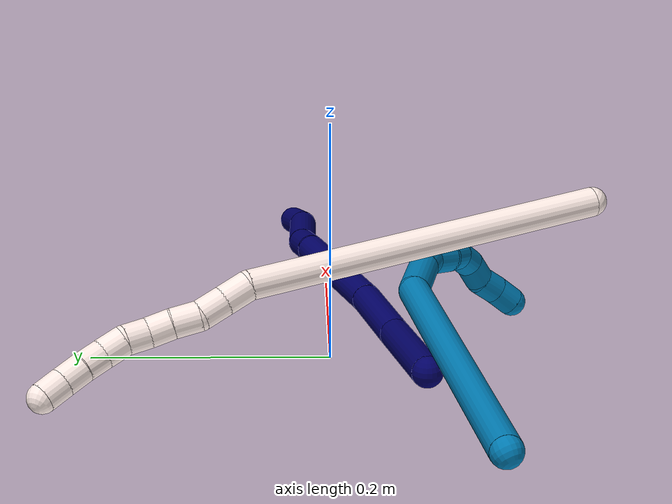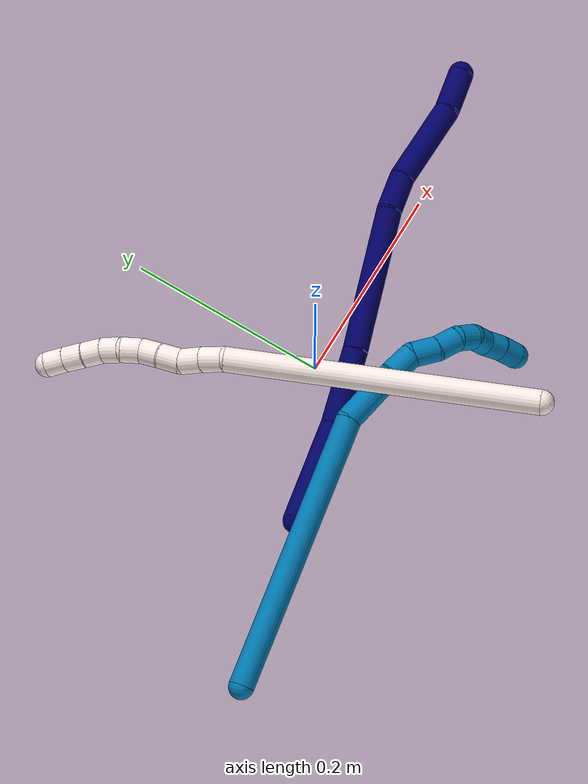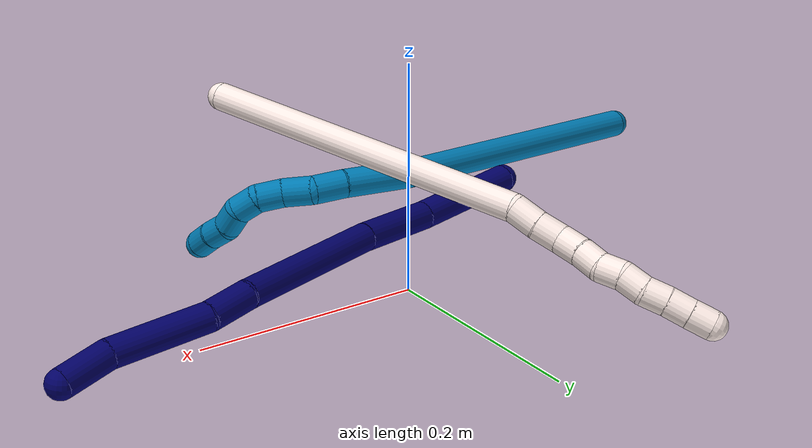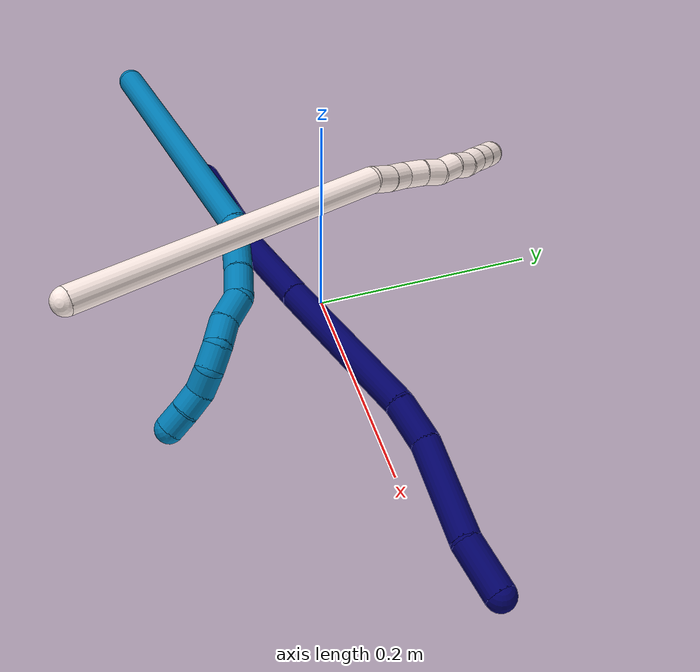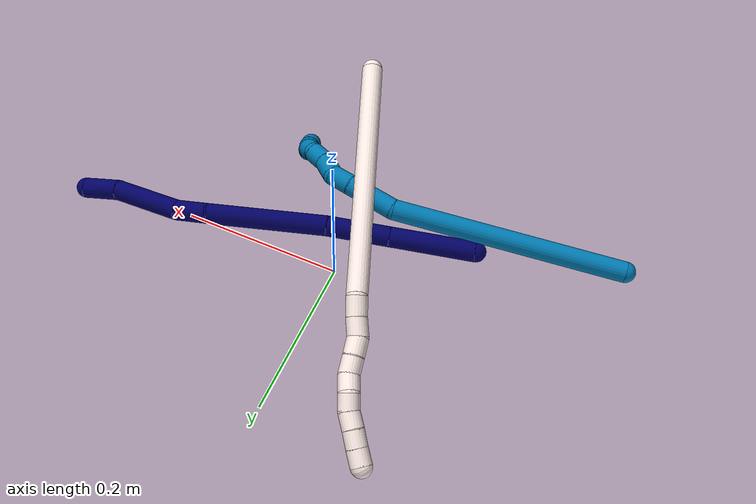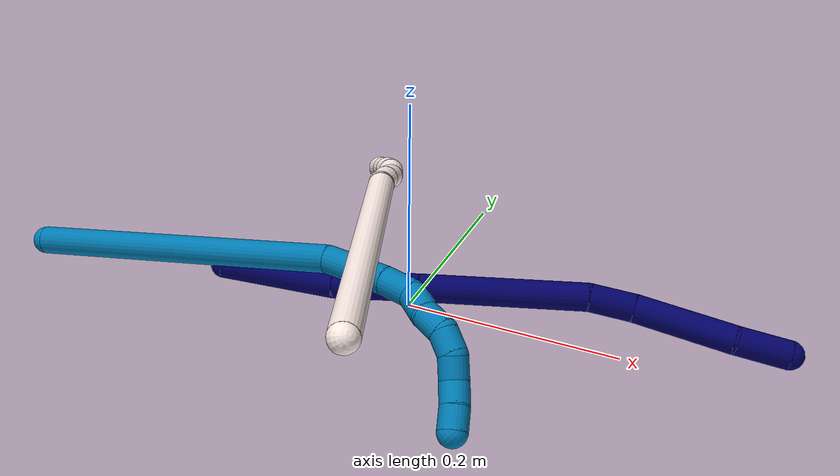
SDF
<sdf version="1.7">
 <world name="default">
  <model name="photoneo_s_sensor">
   <static>1</static>
   <pose>0 0 2 1.57079 1.57079 3.14159</pose>
   <link name="link">
    <inertial><mass>0.1</mass></inertial>
    <sensor name="sensor" type="depth">
     <update_rate>30</update_rate>
     <camera>
      <horizontal_fov>1.22</horizontal_fov>
      <image><width>1920</width><height>1200</height><format>B8G8R8</format></image>
      <clip><near>0.1</near><far>4</far></clip>
      <depth_camera><output>points</output></depth_camera>
     </camera>
     <plugin name="camera_plugin" filename="libgazebo_ros_depth_camera.so">
      <baseline>0.2</baseline>
      <alwaysOn>1</alwaysOn>
      <updateRate>0.0</updateRate>
      <cameraName>camera_ir</cameraName>
      <imageTopicName>/camera/color/image_raw</imageTopicName>
      <cameraInfoTopicName>/camera/color/camera_info</cameraInfoTopicName>
      <depthImageTopicName>/camera/depth/image_raw</depthImageTopicName>
      <depthImageCameraInfoTopicName>/camera/depth/camera_info</depthImageCameraInfoTopicName>
      <pointCloudTopicName>/camera/depth/points</pointCloudTopicName>
      <frameName>fr_optical</frameName>
      <pointCloudCutoff>0.1</pointCloudCutoff>
      <pointCloudCutoffMax>2.0</pointCloudCutoffMax>
      <distortionK1>0</distortionK1>
      <distortionK2>0</distortionK2>
      <distortionK3>0</distortionK3>
      <distortionT1>0</distortionT1>
      <distortionT2>0</distortionT2>
      <CxPrime>0</CxPrime>
      <Cx>0</Cx>
      <Cy>0</Cy>
      <focalLength>0</focalLength>
      <hackBaseline>0</hackBaseline>
     </plugin>
    </sensor>
   </link>
  </model>
  <model name="bin">
   <static>1</static>
   <link name="bottom">
    <collision name="collision-bottom">
     <pose>0 0 -0.01 0 -0 0</pose>
     <geometry><box><size>0.8 0.6 0.02</size></box></geometry>
     <surface>
      <friction><ode><mu>100</mu><mu2>100</mu2></ode></friction>
      <contact><collide_bitmask>65535</collide_bitmask></contact>
     </surface>
    </collision>
   </link>
   <link name="west_wall">
    <collision name="collision-west_wall">
     <pose>-0.41 0 0.1 0 -0 0</pose>
     <geometry><box><size>0.02 0.6 0.2</size></box></geometry>
     <surface>
      <friction><ode><mu>100</mu><mu2>100</mu2></ode></friction>
      <contact><collide_bitmask>65535</collide_bitmask></contact>
     </surface>
    </collision>
   </link>
   <link name="east_wall">
    <collision name="collision-east_wall">
     <pose>0.41 0 0.1 0 -0 0</pose>
     <geometry><box><size>0.02 0.6 0.2</size></box></geometry>
     <surface>
      <friction><ode><mu>100</mu><mu2>100</mu2></ode></friction>
      <contact><collide_bitmask>65535</collide_bitmask></contact>
     </surface>
    </collision>
   </link>
   <link name="south_wall">
    <collision name="collision-south_wall">
     <pose>0 -0.31 0.1 0 -0 0</pose>
     <geometry><box><size>0.8 0.02 0.2</size></box></geometry>
     <surface>
      <friction><ode><mu>100</mu><mu2>100</mu2></ode></friction>
      <contact><collide_bitmask>65535</collide_bitmask></contact>
     </surface>
    </collision>
   </link>
   <link name="north_wall">
    <collision name="collision-north_wall">
     <pose>0 0.31 0.1 0 -0 0</pose>
     <geometry><box><size>0.8 0.02 0.2</size></box></geometry>
     <surface>
      <friction><ode><mu>100</mu><mu2>100</mu2></ode></friction>
      <contact><collide_bitmask>65535</collide_bitmask></contact>
     </surface>
    </collision>
   </link>
  </model>
  <model name="7">
   <static>0</static>
   <link name="7">
    <collision name="collision-cylinder-e_1_1_4">
     <pose>0.047877 0.01971 0.007584 -1.20348 1.15536 -0.841758</pose>
     <geometry><cylinder><radius>0.0125</radius><length>0.104657</length></cylinder></geometry>
     <surface>
      <friction><ode><mu>1.16</mu><mu2>1.16</mu2><slip1>0</slip1><slip2>0</slip2></ode></friction>
      <contact><ode><kp>1e+06</kp><kd>1</kd><max_vel>0</max_vel><min_depth>0.001</min_depth></ode></contact>
     </surface>
    </collision>
    <visual name="visual-cylinder-e_1_1_4">
     <pose>0.047877 0.01971 0.007584 -1.20348 1.15536 -0.841758</pose>
     <geometry><cylinder><radius>0.0125</radius><length>0.104657</length></cylinder></geometry>
     <material><ambient>0.003922 0 0.403922 1</ambient></material>
    </visual>
    <collision name="collision-cylinder-e_2_4_5">
     <pose>0.132606 0.051477 0.016264 -1.4802 1.25338 -1.16851</pose>
     <geometry><cylinder><radius>0.0125</radius><length>0.077577</length></cylinder></geometry>
     <surface>
      <friction><ode><mu>1.16</mu><mu2>1.16</mu2><slip1>0</slip1><slip2>0</slip2></ode></friction>
      <contact><ode><kp>1e+06</kp><kd>1</kd><max_vel>0</max_vel><min_depth>0.001</min_depth></ode></contact>
     </surface>
    </collision>
    <visual name="visual-cylinder-e_2_4_5">
     <pose>0.132606 0.051477 0.016264 -1.4802 1.25338 -1.16851</pose>
     <geometry><cylinder><radius>0.0125</radius><length>0.077577</length></cylinder></geometry>
     <material><ambient>0.003922 0 0.403922 1</ambient></material>
    </visual>
    <collision name="collision-cylinder-e_3_5_6">
     <pose>0.240374 0.082703 0.022898 -1.2895 1.29653 -1.0355</pose>
     <geometry><cylinder><radius>0.0125</radius><length>0.147341</length></cylinder></geometry>
     <surface>
      <friction><ode><mu>1.16</mu><mu2>1.16</mu2><slip1>0</slip1><slip2>0</slip2></ode></friction>
      <contact><ode><kp>1e+06</kp><kd>1</kd><max_vel>0</max_vel><min_depth>0.001</min_depth></ode></contact>
     </surface>
    </collision>
    <visual name="visual-cylinder-e_3_5_6">
     <pose>0.240374 0.082703 0.022898 -1.2895 1.29653 -1.0355</pose>
     <geometry><cylinder><radius>0.0125</radius><length>0.147341</length></cylinder></geometry>
     <material><ambient>0.003922 0 0.403922 1</ambient></material>
    </visual>
    <collision name="collision-cylinder-e_4_6_7">
     <pose>0.329246 0.108826 0.032887 -1.00153 1.13981 -0.674645</pose>
     <geometry><cylinder><radius>0.0125</radius><length>0.039525</length></cylinder></geometry>
     <surface>
      <friction><ode><mu>1.16</mu><mu2>1.16</mu2><slip1>0</slip1><slip2>0</slip2></ode></friction>
      <contact><ode><kp>1e+06</kp><kd>1</kd><max_vel>0</max_vel><min_depth>0.001</min_depth></ode></contact>
     </surface>
    </collision>
    <visual name="visual-cylinder-e_4_6_7">
     <pose>0.329246 0.108826 0.032887 -1.00153 1.13981 -0.674645</pose>
     <geometry><cylinder><radius>0.0125</radius><length>0.039525</length></cylinder></geometry>
     <material><ambient>0.003922 0 0.403922 1</ambient></material>
    </visual>
    <collision name="collision-cylinder-e_5_7_8">
     <pose>0.382512 0.139153 0.04527 -1.24359 0.960749 -0.714776</pose>
     <geometry><cylinder><radius>0.0125</radius><length>0.086164</length></cylinder></geometry>
     <surface>
      <friction><ode><mu>1.16</mu><mu2>1.16</mu2><slip1>0</slip1><slip2>0</slip2></ode></friction>
      <contact><ode><kp>1e+06</kp><kd>1</kd><max_vel>0</max_vel><min_depth>0.001</min_depth></ode></contact>
     </surface>
    </collision>
    <visual name="visual-cylinder-e_5_7_8">
     <pose>0.382512 0.139153 0.04527 -1.24359 0.960749 -0.714776</pose>
     <geometry><cylinder><radius>0.0125</radius><length>0.086164</length></cylinder></geometry>
     <material><ambient>0.003922 0 0.403922 1</ambient></material>
    </visual>
    <collision name="collision-cylinder-e_6_8_2">
     <pose>0.437993 0.170129 0.059176 -0.904905 1.12375 -0.593943</pose>
     <geometry><cylinder><radius>0.0125</radius><length>0.044736</length></cylinder></geometry>
     <surface>
      <friction><ode><mu>1.16</mu><mu2>1.16</mu2><slip1>0</slip1><slip2>0</slip2></ode></friction>
      <contact><ode><kp>1e+06</kp><kd>1</kd><max_vel>0</max_vel><min_depth>0.001</min_depth></ode></contact>
     </surface>
    </collision>
    <visual name="visual-cylinder-e_6_8_2">
     <pose>0.437993 0.170129 0.059176 -0.904905 1.12375 -0.593943</pose>
     <geometry><cylinder><radius>0.0125</radius><length>0.044736</length></cylinder></geometry>
     <material><ambient>0.003922 0 0.403922 1</ambient></material>
    </visual>
    <collision name="collision-sphere-2">
     <pose>0.458163 0.177733 0.06515 0 -0 0</pose>
     <geometry><sphere><radius>0.0125</radius></sphere></geometry>
     <surface>
      <friction><ode><mu>1.16</mu><mu2>1.16</mu2><slip1>0</slip1><slip2>0</slip2></ode></friction>
      <contact><ode><kp>1e+06</kp><kd>1</kd><max_vel>0</max_vel><min_depth>0.001</min_depth></ode></contact>
     </surface>
    </collision>
    <visual name="visual-sphere-2">
     <pose>0.458163 0.177733 0.06515 0 -0 0</pose>
     <geometry><sphere><radius>0.0125</radius></sphere></geometry>
     <material><ambient>0.003922 0 0.403922 1</ambient></material>
    </visual>
    <collision name="collision-sphere-4">
     <pose>0.095755 0.03942 0.015168 0 -0 0</pose>
     <geometry><sphere><radius>0.0125</radius></sphere></geometry>
     <surface>
      <friction><ode><mu>1.16</mu><mu2>1.16</mu2><slip1>0</slip1><slip2>0</slip2></ode></friction>
      <contact><ode><kp>1e+06</kp><kd>1</kd><max_vel>0</max_vel><min_depth>0.001</min_depth></ode></contact>
     </surface>
    </collision>
    <visual name="visual-sphere-4">
     <pose>0.095755 0.03942 0.015168 0 -0 0</pose>
     <geometry><sphere><radius>0.0125</radius></sphere></geometry>
     <material><ambient>0.003922 0 0.403922 1</ambient></material>
    </visual>
    <collision name="collision-sphere-1">
     <geometry><sphere><radius>0.0125</radius></sphere></geometry>
     <surface>
      <friction><ode><mu>1.16</mu><mu2>1.16</mu2><slip1>0</slip1><slip2>0</slip2></ode></friction>
      <contact><ode><kp>1e+06</kp><kd>1</kd><max_vel>0</max_vel><min_depth>0.001</min_depth></ode></contact>
     </surface>
    </collision>
    <visual name="visual-sphere-1">
     <geometry><sphere><radius>0.0125</radius></sphere></geometry>
     <material><ambient>0.003922 0 0.403922 1</ambient></material>
    </visual>
    <collision name="collision-sphere-8">
     <pose>0.417823 0.162525 0.053202 0 -0 0</pose>
     <geometry><sphere><radius>0.0125</radius></sphere></geometry>
     <surface>
      <friction><ode><mu>1.16</mu><mu2>1.16</mu2><slip1>0</slip1><slip2>0</slip2></ode></friction>
      <contact><ode><kp>1e+06</kp><kd>1</kd><max_vel>0</max_vel><min_depth>0.001</min_depth></ode></contact>
     </surface>
    </collision>
    <visual name="visual-sphere-8">
     <pose>0.417823 0.162525 0.053202 0 -0 0</pose>
     <geometry><sphere><radius>0.0125</radius></sphere></geometry>
     <material><ambient>0.003922 0 0.403922 1</ambient></material>
    </visual>
    <collision name="collision-sphere-5">
     <pose>0.169457 0.063534 0.017359 0 -0 0</pose>
     <geometry><sphere><radius>0.0125</radius></sphere></geometry>
     <surface>
      <friction><ode><mu>1.16</mu><mu2>1.16</mu2><slip1>0</slip1><slip2>0</slip2></ode></friction>
      <contact><ode><kp>1e+06</kp><kd>1</kd><max_vel>0</max_vel><min_depth>0.001</min_depth></ode></contact>
     </surface>
    </collision>
    <visual name="visual-sphere-5">
     <pose>0.169457 0.063534 0.017359 0 -0 0</pose>
     <geometry><sphere><radius>0.0125</radius></sphere></geometry>
     <material><ambient>0.003922 0 0.403922 1</ambient></material>
    </visual>
    <collision name="collision-sphere-6">
     <pose>0.311291 0.101872 0.028437 0 -0 0</pose>
     <geometry><sphere><radius>0.0125</radius></sphere></geometry>
     <surface>
      <friction><ode><mu>1.16</mu><mu2>1.16</mu2><slip1>0</slip1><slip2>0</slip2></ode></friction>
      <contact><ode><kp>1e+06</kp><kd>1</kd><max_vel>0</max_vel><min_depth>0.001</min_depth></ode></contact>
     </surface>
    </collision>
    <visual name="visual-sphere-6">
     <pose>0.311291 0.101872 0.028437 0 -0 0</pose>
     <geometry><sphere><radius>0.0125</radius></sphere></geometry>
     <material><ambient>0.003922 0 0.403922 1</ambient></material>
    </visual>
    <collision name="collision-sphere-7">
     <pose>0.347201 0.11578 0.037337 0 -0 0</pose>
     <geometry><sphere><radius>0.0125</radius></sphere></geometry>
     <surface>
      <friction><ode><mu>1.16</mu><mu2>1.16</mu2><slip1>0</slip1><slip2>0</slip2></ode></friction>
      <contact><ode><kp>1e+06</kp><kd>1</kd><max_vel>0</max_vel><min_depth>0.001</min_depth></ode></contact>
     </surface>
    </collision>
    <visual name="visual-sphere-7">
     <pose>0.347201 0.11578 0.037337 0 -0 0</pose>
     <geometry><sphere><radius>0.0125</radius></sphere></geometry>
     <material><ambient>0.003922 0 0.403922 1</ambient></material>
    </visual>
    <inertial>
     <pose>0.232562 0.084288 0.026554 0 -0 0</pose>
     <mass>0.5</mass>
     <inertia><ixx>5e-06</ixx><ixy>0</ixy><ixz>0</ixz><iyy>0.000321</iyy><iyz>0</iyz><izz>-0.000607</izz></inertia>
    </inertial>
   </link>
   <pose>-0.15344 -0.070351 0.044338 3.07294 -0.070338 0.581274</pose>
  </model>
  <model name="9">
   <static>0</static>
   <link name="9">
    <collision name="collision-cylinder-e_1_1_4">
     <pose>0.092484 0.032825 0.099665 -0.318167 0.722431 -0.121077</pose>
     <geometry><cylinder><radius>0.0125</radius><length>0.279743</length></cylinder></geometry>
     <surface>
      <friction><ode><mu>1.16</mu><mu2>1.16</mu2><slip1>0</slip1><slip2>0</slip2></ode></friction>
      <contact><ode><kp>1e+06</kp><kd>1</kd><max_vel>0</max_vel><min_depth>0.001</min_depth></ode></contact>
     </surface>
    </collision>
    <visual name="visual-cylinder-e_1_1_4">
     <pose>0.092484 0.032825 0.099665 -0.318167 0.722431 -0.121077</pose>
     <geometry><cylinder><radius>0.0125</radius><length>0.279743</length></cylinder></geometry>
     <material><ambient>0 0.490196 0.709804 1</ambient></material>
    </visual>
    <collision name="collision-cylinder-e_2_4_5">
     <pose>0.21119 0.065436 0.21554 0.013238 1.01707 0.007379</pose>
     <geometry><cylinder><radius>0.0125</radius><length>0.061657</length></cylinder></geometry>
     <surface>
      <friction><ode><mu>1.16</mu><mu2>1.16</mu2><slip1>0</slip1><slip2>0</slip2></ode></friction>
      <contact><ode><kp>1e+06</kp><kd>1</kd><max_vel>0</max_vel><min_depth>0.001</min_depth></ode></contact>
     </surface>
    </collision>
    <visual name="visual-cylinder-e_2_4_5">
     <pose>0.21119 0.065436 0.21554 0.013238 1.01707 0.007379</pose>
     <geometry><cylinder><radius>0.0125</radius><length>0.061657</length></cylinder></geometry>
     <material><ambient>0 0.490196 0.709804 1</ambient></material>
    </visual>
    <collision name="collision-cylinder-e_3_5_6">
     <pose>0.249975 0.065248 0.237956 -0.004361 1.11201 -0.00271</pose>
     <geometry><cylinder><radius>0.0125</radius><length>0.028024</length></cylinder></geometry>
     <surface>
      <friction><ode><mu>1.16</mu><mu2>1.16</mu2><slip1>0</slip1><slip2>0</slip2></ode></friction>
      <contact><ode><kp>1e+06</kp><kd>1</kd><max_vel>0</max_vel><min_depth>0.001</min_depth></ode></contact>
     </surface>
    </collision>
    <visual name="visual-cylinder-e_3_5_6">
     <pose>0.249975 0.065248 0.237956 -0.004361 1.11201 -0.00271</pose>
     <geometry><cylinder><radius>0.0125</radius><length>0.028024</length></cylinder></geometry>
     <material><ambient>0 0.490196 0.709804 1</ambient></material>
    </visual>
    <collision name="collision-cylinder-e_4_6_7">
     <pose>0.274832 0.060783 0.245326 1.31697 1.20984 0.982363</pose>
     <geometry><cylinder><radius>0.0125</radius><length>0.026282</length></cylinder></geometry>
     <surface>
      <friction><ode><mu>1.16</mu><mu2>1.16</mu2><slip1>0</slip1><slip2>0</slip2></ode></friction>
      <contact><ode><kp>1e+06</kp><kd>1</kd><max_vel>0</max_vel><min_depth>0.001</min_depth></ode></contact>
     </surface>
    </collision>
    <visual name="visual-cylinder-e_4_6_7">
     <pose>0.274832 0.060783 0.245326 1.31697 1.20984 0.982363</pose>
     <geometry><cylinder><radius>0.0125</radius><length>0.026282</length></cylinder></geometry>
     <material><ambient>0 0.490196 0.709804 1</ambient></material>
    </visual>
    <collision name="collision-cylinder-e_5_7_8">
     <pose>0.298295 0.054762 0.249038 0.540903 1.31088 0.420019</pose>
     <geometry><cylinder><radius>0.0125</radius><length>0.023114</length></cylinder></geometry>
     <surface>
      <friction><ode><mu>1.16</mu><mu2>1.16</mu2><slip1>0</slip1><slip2>0</slip2></ode></friction>
      <contact><ode><kp>1e+06</kp><kd>1</kd><max_vel>0</max_vel><min_depth>0.001</min_depth></ode></contact>
     </surface>
    </collision>
    <visual name="visual-cylinder-e_5_7_8">
     <pose>0.298295 0.054762 0.249038 0.540903 1.31088 0.420019</pose>
     <geometry><cylinder><radius>0.0125</radius><length>0.023114</length></cylinder></geometry>
     <material><ambient>0 0.490196 0.709804 1</ambient></material>
    </visual>
    <collision name="collision-cylinder-e_6_8_9">
     <pose>0.319551 0.05316 0.249344 3.10937 1.35222 3.10143</pose>
     <geometry><cylinder><radius>0.0125</radius><length>0.020667</length></cylinder></geometry>
     <surface>
      <friction><ode><mu>1.16</mu><mu2>1.16</mu2><slip1>0</slip1><slip2>0</slip2></ode></friction>
      <contact><ode><kp>1e+06</kp><kd>1</kd><max_vel>0</max_vel><min_depth>0.001</min_depth></ode></contact>
     </surface>
    </collision>
    <visual name="visual-cylinder-e_6_8_9">
     <pose>0.319551 0.05316 0.249344 3.10937 1.35222 3.10143</pose>
     <geometry><cylinder><radius>0.0125</radius><length>0.020667</length></cylinder></geometry>
     <material><ambient>0 0.490196 0.709804 1</ambient></material>
    </visual>
    <collision name="collision-cylinder-e_7_9_10">
     <pose>0.337644 0.054386 0.240915 -2.93486 0.902158 -2.71964</pose>
     <geometry><cylinder><radius>0.0125</radius><length>0.020403</length></cylinder></geometry>
     <surface>
      <friction><ode><mu>1.16</mu><mu2>1.16</mu2><slip1>0</slip1><slip2>0</slip2></ode></friction>
      <contact><ode><kp>1e+06</kp><kd>1</kd><max_vel>0</max_vel><min_depth>0.001</min_depth></ode></contact>
     </surface>
    </collision>
    <visual name="visual-cylinder-e_7_9_10">
     <pose>0.337644 0.054386 0.240915 -2.93486 0.902158 -2.71964</pose>
     <geometry><cylinder><radius>0.0125</radius><length>0.020403</length></cylinder></geometry>
     <material><ambient>0 0.490196 0.709804 1</ambient></material>
    </visual>
    <collision name="collision-cylinder-e_8_10_11">
     <pose>0.354172 0.053475 0.229905 2.71186 1.01431 2.39309</pose>
     <geometry><cylinder><radius>0.0125</radius><length>0.020076</length></cylinder></geometry>
     <surface>
      <friction><ode><mu>1.16</mu><mu2>1.16</mu2><slip1>0</slip1><slip2>0</slip2></ode></friction>
      <contact><ode><kp>1e+06</kp><kd>1</kd><max_vel>0</max_vel><min_depth>0.001</min_depth></ode></contact>
     </surface>
    </collision>
    <visual name="visual-cylinder-e_8_10_11">
     <pose>0.354172 0.053475 0.229905 2.71186 1.01431 2.39309</pose>
     <geometry><cylinder><radius>0.0125</radius><length>0.020076</length></cylinder></geometry>
     <material><ambient>0 0.490196 0.709804 1</ambient></material>
    </visual>
    <collision name="collision-cylinder-e_9_11_2">
     <pose>0.370486 0.049207 0.219134 2.80843 0.891001 2.46449</pose>
     <geometry><cylinder><radius>0.0125</radius><length>0.020035</length></cylinder></geometry>
     <surface>
      <friction><ode><mu>1.16</mu><mu2>1.16</mu2><slip1>0</slip1><slip2>0</slip2></ode></friction>
      <contact><ode><kp>1e+06</kp><kd>1</kd><max_vel>0</max_vel><min_depth>0.001</min_depth></ode></contact>
     </surface>
    </collision>
    <visual name="visual-cylinder-e_9_11_2">
     <pose>0.370486 0.049207 0.219134 2.80843 0.891001 2.46449</pose>
     <geometry><cylinder><radius>0.0125</radius><length>0.020035</length></cylinder></geometry>
     <material><ambient>0 0.490196 0.709804 1</ambient></material>
    </visual>
    <collision name="collision-sphere-2">
     <pose>0.378277 0.047147 0.213183 0 -0 0</pose>
     <geometry><sphere><radius>0.0125</radius></sphere></geometry>
     <surface>
      <friction><ode><mu>1.16</mu><mu2>1.16</mu2><slip1>0</slip1><slip2>0</slip2></ode></friction>
      <contact><ode><kp>1e+06</kp><kd>1</kd><max_vel>0</max_vel><min_depth>0.001</min_depth></ode></contact>
     </surface>
    </collision>
    <visual name="visual-sphere-2">
     <pose>0.378277 0.047147 0.213183 0 -0 0</pose>
     <geometry><sphere><radius>0.0125</radius></sphere></geometry>
     <material><ambient>0 0.490196 0.709804 1</ambient></material>
    </visual>
    <collision name="collision-sphere-11">
     <pose>0.362696 0.051266 0.225085 0 -0 0</pose>
     <geometry><sphere><radius>0.0125</radius></sphere></geometry>
     <surface>
      <friction><ode><mu>1.16</mu><mu2>1.16</mu2><slip1>0</slip1><slip2>0</slip2></ode></friction>
      <contact><ode><kp>1e+06</kp><kd>1</kd><max_vel>0</max_vel><min_depth>0.001</min_depth></ode></contact>
     </surface>
    </collision>
    <visual name="visual-sphere-11">
     <pose>0.362696 0.051266 0.225085 0 -0 0</pose>
     <geometry><sphere><radius>0.0125</radius></sphere></geometry>
     <material><ambient>0 0.490196 0.709804 1</ambient></material>
    </visual>
    <collision name="collision-sphere-10">
     <pose>0.345649 0.055684 0.234725 0 -0 0</pose>
     <geometry><sphere><radius>0.0125</radius></sphere></geometry>
     <surface>
      <friction><ode><mu>1.16</mu><mu2>1.16</mu2><slip1>0</slip1><slip2>0</slip2></ode></friction>
      <contact><ode><kp>1e+06</kp><kd>1</kd><max_vel>0</max_vel><min_depth>0.001</min_depth></ode></contact>
     </surface>
    </collision>
    <visual name="visual-sphere-10">
     <pose>0.345649 0.055684 0.234725 0 -0 0</pose>
     <geometry><sphere><radius>0.0125</radius></sphere></geometry>
     <material><ambient>0 0.490196 0.709804 1</ambient></material>
    </visual>
    <collision name="collision-sphere-9">
     <pose>0.329639 0.053088 0.247105 0 -0 0</pose>
     <geometry><sphere><radius>0.0125</radius></sphere></geometry>
     <surface>
      <friction><ode><mu>1.16</mu><mu2>1.16</mu2><slip1>0</slip1><slip2>0</slip2></ode></friction>
      <contact><ode><kp>1e+06</kp><kd>1</kd><max_vel>0</max_vel><min_depth>0.001</min_depth></ode></contact>
     </surface>
    </collision>
    <visual name="visual-sphere-9">
     <pose>0.329639 0.053088 0.247105 0 -0 0</pose>
     <geometry><sphere><radius>0.0125</radius></sphere></geometry>
     <material><ambient>0 0.490196 0.709804 1</ambient></material>
    </visual>
    <collision name="collision-sphere-4">
     <pose>0.184969 0.065651 0.19933 0 -0 0</pose>
     <geometry><sphere><radius>0.0125</radius></sphere></geometry>
     <surface>
      <friction><ode><mu>1.16</mu><mu2>1.16</mu2><slip1>0</slip1><slip2>0</slip2></ode></friction>
      <contact><ode><kp>1e+06</kp><kd>1</kd><max_vel>0</max_vel><min_depth>0.001</min_depth></ode></contact>
     </surface>
    </collision>
    <visual name="visual-sphere-4">
     <pose>0.184969 0.065651 0.19933 0 -0 0</pose>
     <geometry><sphere><radius>0.0125</radius></sphere></geometry>
     <material><ambient>0 0.490196 0.709804 1</ambient></material>
    </visual>
    <collision name="collision-sphere-1">
     <geometry><sphere><radius>0.0125</radius></sphere></geometry>
     <surface>
      <friction><ode><mu>1.16</mu><mu2>1.16</mu2><slip1>0</slip1><slip2>0</slip2></ode></friction>
      <contact><ode><kp>1e+06</kp><kd>1</kd><max_vel>0</max_vel><min_depth>0.001</min_depth></ode></contact>
     </surface>
    </collision>
    <visual name="visual-sphere-1">
     <geometry><sphere><radius>0.0125</radius></sphere></geometry>
     <material><ambient>0 0.490196 0.709804 1</ambient></material>
    </visual>
    <collision name="collision-sphere-8">
     <pose>0.309463 0.053232 0.251584 0 -0 0</pose>
     <geometry><sphere><radius>0.0125</radius></sphere></geometry>
     <surface>
      <friction><ode><mu>1.16</mu><mu2>1.16</mu2><slip1>0</slip1><slip2>0</slip2></ode></friction>
      <contact><ode><kp>1e+06</kp><kd>1</kd><max_vel>0</max_vel><min_depth>0.001</min_depth></ode></contact>
     </surface>
    </collision>
    <visual name="visual-sphere-8">
     <pose>0.309463 0.053232 0.251584 0 -0 0</pose>
     <geometry><sphere><radius>0.0125</radius></sphere></geometry>
     <material><ambient>0 0.490196 0.709804 1</ambient></material>
    </visual>
    <collision name="collision-sphere-5">
     <pose>0.237412 0.065221 0.23175 0 -0 0</pose>
     <geometry><sphere><radius>0.0125</radius></sphere></geometry>
     <surface>
      <friction><ode><mu>1.16</mu><mu2>1.16</mu2><slip1>0</slip1><slip2>0</slip2></ode></friction>
      <contact><ode><kp>1e+06</kp><kd>1</kd><max_vel>0</max_vel><min_depth>0.001</min_depth></ode></contact>
     </surface>
    </collision>
    <visual name="visual-sphere-5">
     <pose>0.237412 0.065221 0.23175 0 -0 0</pose>
     <geometry><sphere><radius>0.0125</radius></sphere></geometry>
     <material><ambient>0 0.490196 0.709804 1</ambient></material>
    </visual>
    <collision name="collision-sphere-6">
     <pose>0.262538 0.065275 0.244161 0 -0 0</pose>
     <geometry><sphere><radius>0.0125</radius></sphere></geometry>
     <surface>
      <friction><ode><mu>1.16</mu><mu2>1.16</mu2><slip1>0</slip1><slip2>0</slip2></ode></friction>
      <contact><ode><kp>1e+06</kp><kd>1</kd><max_vel>0</max_vel><min_depth>0.001</min_depth></ode></contact>
     </surface>
    </collision>
    <visual name="visual-sphere-6">
     <pose>0.262538 0.065275 0.244161 0 -0 0</pose>
     <geometry><sphere><radius>0.0125</radius></sphere></geometry>
     <material><ambient>0 0.490196 0.709804 1</ambient></material>
    </visual>
    <collision name="collision-sphere-7">
     <pose>0.287126 0.056291 0.246492 0 -0 0</pose>
     <geometry><sphere><radius>0.0125</radius></sphere></geometry>
     <surface>
      <friction><ode><mu>1.16</mu><mu2>1.16</mu2><slip1>0</slip1><slip2>0</slip2></ode></friction>
      <contact><ode><kp>1e+06</kp><kd>1</kd><max_vel>0</max_vel><min_depth>0.001</min_depth></ode></contact>
     </surface>
    </collision>
    <visual name="visual-sphere-7">
     <pose>0.287126 0.056291 0.246492 0 -0 0</pose>
     <geometry><sphere><radius>0.0125</radius></sphere></geometry>
     <material><ambient>0 0.490196 0.709804 1</ambient></material>
    </visual>
    <inertial>
     <pose>0.176085 0.044353 0.158234 0 -0 0</pose>
     <mass>0.5</mass>
     <inertia>
      <ixx>0.001243</ixx>
      <ixy>0</ixy>
      <ixz>0</ixz>
      <iyy>0.00165</iyy>
      <iyz>0</iyz>
      <izz>-0.001656</izz>
     </inertia>
    </inertial>
   </link>
   <pose>-0.322321 -0.112181 0.050905 -0.684657 0.441832 -0.521762</pose>
  </model>
  <model name="11">
   <static>0</static>
   <link name="11">
    <collision name="collision-cylinder-e_1_1_4">
     <pose>-0.026675 0.109846 -0.106212 -2.33938 -0.172834 0.403006</pose>
     <geometry><cylinder><radius>0.0125</radius><length>0.310217</length></cylinder></geometry>
     <surface>
      <friction><ode><mu>1.16</mu><mu2>1.16</mu2><slip1>0</slip1><slip2>0</slip2></ode></friction>
      <contact><ode><kp>1e+06</kp><kd>1</kd><max_vel>0</max_vel><min_depth>0.001</min_depth></ode></contact>
     </surface>
    </collision>
    <visual name="visual-cylinder-e_1_1_4">
     <pose>-0.026675 0.109846 -0.106212 -2.33938 -0.172834 0.403006</pose>
     <geometry><cylinder><radius>0.0125</radius><length>0.310217</length></cylinder></geometry>
     <material><ambient>1 0.933333 0.909804 1</ambient></material>
    </visual>
    <collision name="collision-cylinder-e_2_4_5">
     <pose>-0.052514 0.226249 -0.222367 -2.55852 0.070064 -0.23252</pose>
     <geometry><cylinder><radius>0.0125</radius><length>0.023878</length></cylinder></geometry>
     <surface>
      <friction><ode><mu>1.16</mu><mu2>1.16</mu2><slip1>0</slip1><slip2>0</slip2></ode></friction>
      <contact><ode><kp>1e+06</kp><kd>1</kd><max_vel>0</max_vel><min_depth>0.001</min_depth></ode></contact>
     </surface>
    </collision>
    <visual name="visual-cylinder-e_2_4_5">
     <pose>-0.052514 0.226249 -0.222367 -2.55852 0.070064 -0.23252</pose>
     <geometry><cylinder><radius>0.0125</radius><length>0.023878</length></cylinder></geometry>
     <material><ambient>1 0.933333 0.909804 1</ambient></material>
    </visual>
    <collision name="collision-cylinder-e_3_5_6">
     <pose>-0.051895 0.238565 -0.24206 -2.60808 -0.019186 0.070183</pose>
     <geometry><cylinder><radius>0.0125</radius><length>0.022654</length></cylinder></geometry>
     <surface>
      <friction><ode><mu>1.16</mu><mu2>1.16</mu2><slip1>0</slip1><slip2>0</slip2></ode></friction>
      <contact><ode><kp>1e+06</kp><kd>1</kd><max_vel>0</max_vel><min_depth>0.001</min_depth></ode></contact>
     </surface>
    </collision>
    <visual name="visual-cylinder-e_3_5_6">
     <pose>-0.051895 0.238565 -0.24206 -2.60808 -0.019186 0.070183</pose>
     <geometry><cylinder><radius>0.0125</radius><length>0.022654</length></cylinder></geometry>
     <material><ambient>1 0.933333 0.909804 1</ambient></material>
    </visual>
    <collision name="collision-cylinder-e_4_6_7">
     <pose>-0.051987 0.252957 -0.259003 -2.26539 0.011139 -0.023776</pose>
     <geometry><cylinder><radius>0.0125</radius><length>0.022473</length></cylinder></geometry>
     <surface>
      <friction><ode><mu>1.16</mu><mu2>1.16</mu2><slip1>0</slip1><slip2>0</slip2></ode></friction>
      <contact><ode><kp>1e+06</kp><kd>1</kd><max_vel>0</max_vel><min_depth>0.001</min_depth></ode></contact>
     </surface>
    </collision>
    <visual name="visual-cylinder-e_4_6_7">
     <pose>-0.051987 0.252957 -0.259003 -2.26539 0.011139 -0.023776</pose>
     <geometry><cylinder><radius>0.0125</radius><length>0.022473</length></cylinder></geometry>
     <material><ambient>1 0.933333 0.909804 1</ambient></material>
    </visual>
    <collision name="collision-cylinder-e_5_7_8">
     <pose>-0.050808 0.269038 -0.273001 -2.31126 0.104145 -0.235392</pose>
     <geometry><cylinder><radius>0.0125</radius><length>0.020289</length></cylinder></geometry>
     <surface>
      <friction><ode><mu>1.16</mu><mu2>1.16</mu2><slip1>0</slip1><slip2>0</slip2></ode></friction>
      <contact><ode><kp>1e+06</kp><kd>1</kd><max_vel>0</max_vel><min_depth>0.001</min_depth></ode></contact>
     </surface>
    </collision>
    <visual name="visual-cylinder-e_5_7_8">
     <pose>-0.050808 0.269038 -0.273001 -2.31126 0.104145 -0.235392</pose>
     <geometry><cylinder><radius>0.0125</radius><length>0.020289</length></cylinder></geometry>
     <material><ambient>1 0.933333 0.909804 1</ambient></material>
    </visual>
    <collision name="collision-cylinder-e_6_8_9">
     <pose>-0.05163 0.283066 -0.287316 -2.42192 -0.185806 0.485537</pose>
     <geometry><cylinder><radius>0.0125</radius><length>0.020318</length></cylinder></geometry>
     <surface>
      <friction><ode><mu>1.16</mu><mu2>1.16</mu2><slip1>0</slip1><slip2>0</slip2></ode></friction>
      <contact><ode><kp>1e+06</kp><kd>1</kd><max_vel>0</max_vel><min_depth>0.001</min_depth></ode></contact>
     </surface>
    </collision>
    <visual name="visual-cylinder-e_6_8_9">
     <pose>-0.05163 0.283066 -0.287316 -2.42192 -0.185806 0.485537</pose>
     <geometry><cylinder><radius>0.0125</radius><length>0.020318</length></cylinder></geometry>
     <material><ambient>1 0.933333 0.909804 1</ambient></material>
    </visual>
    <collision name="collision-cylinder-e_7_9_10">
     <pose>-0.052871 0.29505 -0.303279 -2.57294 0.063275 -0.215747</pose>
     <geometry><cylinder><radius>0.0125</radius><length>0.020109</length></cylinder></geometry>
     <surface>
      <friction><ode><mu>1.16</mu><mu2>1.16</mu2><slip1>0</slip1><slip2>0</slip2></ode></friction>
      <contact><ode><kp>1e+06</kp><kd>1</kd><max_vel>0</max_vel><min_depth>0.001</min_depth></ode></contact>
     </surface>
    </collision>
    <visual name="visual-cylinder-e_7_9_10">
     <pose>-0.052871 0.29505 -0.303279 -2.57294 0.063275 -0.215747</pose>
     <geometry><cylinder><radius>0.0125</radius><length>0.020109</length></cylinder></geometry>
     <material><ambient>1 0.933333 0.909804 1</ambient></material>
    </visual>
    <collision name="collision-cylinder-e_8_10_11">
     <pose>-0.053714 0.304511 -0.320761 -2.71914 -0.148375 0.667322</pose>
     <geometry><cylinder><radius>0.0125</radius><length>0.020012</length></cylinder></geometry>
     <surface>
      <friction><ode><mu>1.16</mu><mu2>1.16</mu2><slip1>0</slip1><slip2>0</slip2></ode></friction>
      <contact><ode><kp>1e+06</kp><kd>1</kd><max_vel>0</max_vel><min_depth>0.001</min_depth></ode></contact>
     </surface>
    </collision>
    <visual name="visual-cylinder-e_8_10_11">
     <pose>-0.053714 0.304511 -0.320761 -2.71914 -0.148375 0.667322</pose>
     <geometry><cylinder><radius>0.0125</radius><length>0.020012</length></cylinder></geometry>
     <material><ambient>1 0.933333 0.909804 1</ambient></material>
    </visual>
    <collision name="collision-cylinder-e_9_11_12">
     <pose>-0.055913 0.312562 -0.338953 -2.73074 -0.071836 0.341553</pose>
     <geometry><cylinder><radius>0.0125</radius><length>0.020049</length></cylinder></geometry>
     <surface>
      <friction><ode><mu>1.16</mu><mu2>1.16</mu2><slip1>0</slip1><slip2>0</slip2></ode></friction>
      <contact><ode><kp>1e+06</kp><kd>1</kd><max_vel>0</max_vel><min_depth>0.001</min_depth></ode></contact>
     </surface>
    </collision>
    <visual name="visual-cylinder-e_9_11_12">
     <pose>-0.055913 0.312562 -0.338953 -2.73074 -0.071836 0.341553</pose>
     <geometry><cylinder><radius>0.0125</radius><length>0.020049</length></cylinder></geometry>
     <material><ambient>1 0.933333 0.909804 1</ambient></material>
    </visual>
    <collision name="collision-cylinder-e_10_12_2">
     <pose>-0.057576 0.320259 -0.357361 -2.76045 -0.094503 0.48076</pose>
     <geometry><cylinder><radius>0.0125</radius><length>0.020002</length></cylinder></geometry>
     <surface>
      <friction><ode><mu>1.16</mu><mu2>1.16</mu2><slip1>0</slip1><slip2>0</slip2></ode></friction>
      <contact><ode><kp>1e+06</kp><kd>1</kd><max_vel>0</max_vel><min_depth>0.001</min_depth></ode></contact>
     </surface>
    </collision>
    <visual name="visual-cylinder-e_10_12_2">
     <pose>-0.057576 0.320259 -0.357361 -2.76045 -0.094503 0.48076</pose>
     <geometry><cylinder><radius>0.0125</radius><length>0.020002</length></cylinder></geometry>
     <material><ambient>1 0.933333 0.909804 1</ambient></material>
    </visual>
    <collision name="collision-sphere-2">
     <pose>-0.05852 0.323962 -0.366603 0 -0 0</pose>
     <geometry><sphere><radius>0.0125</radius></sphere></geometry>
     <surface>
      <friction><ode><mu>1.16</mu><mu2>1.16</mu2><slip1>0</slip1><slip2>0</slip2></ode></friction>
      <contact><ode><kp>1e+06</kp><kd>1</kd><max_vel>0</max_vel><min_depth>0.001</min_depth></ode></contact>
     </surface>
    </collision>
    <visual name="visual-sphere-2">
     <pose>-0.05852 0.323962 -0.366603 0 -0 0</pose>
     <geometry><sphere><radius>0.0125</radius></sphere></geometry>
     <material><ambient>1 0.933333 0.909804 1</ambient></material>
    </visual>
    <collision name="collision-sphere-12">
     <pose>-0.056632 0.316555 -0.34812 0 -0 0</pose>
     <geometry><sphere><radius>0.0125</radius></sphere></geometry>
     <surface>
      <friction><ode><mu>1.16</mu><mu2>1.16</mu2><slip1>0</slip1><slip2>0</slip2></ode></friction>
      <contact><ode><kp>1e+06</kp><kd>1</kd><max_vel>0</max_vel><min_depth>0.001</min_depth></ode></contact>
     </surface>
    </collision>
    <visual name="visual-sphere-12">
     <pose>-0.056632 0.316555 -0.34812 0 -0 0</pose>
     <geometry><sphere><radius>0.0125</radius></sphere></geometry>
     <material><ambient>1 0.933333 0.909804 1</ambient></material>
    </visual>
    <collision name="collision-sphere-11">
     <pose>-0.055193 0.308569 -0.329787 0 -0 0</pose>
     <geometry><sphere><radius>0.0125</radius></sphere></geometry>
     <surface>
      <friction><ode><mu>1.16</mu><mu2>1.16</mu2><slip1>0</slip1><slip2>0</slip2></ode></friction>
      <contact><ode><kp>1e+06</kp><kd>1</kd><max_vel>0</max_vel><min_depth>0.001</min_depth></ode></contact>
     </surface>
    </collision>
    <visual name="visual-sphere-11">
     <pose>-0.055193 0.308569 -0.329787 0 -0 0</pose>
     <geometry><sphere><radius>0.0125</radius></sphere></geometry>
     <material><ambient>1 0.933333 0.909804 1</ambient></material>
    </visual>
    <collision name="collision-sphere-10">
     <pose>-0.052235 0.300454 -0.311735 0 -0 0</pose>
     <geometry><sphere><radius>0.0125</radius></sphere></geometry>
     <surface>
      <friction><ode><mu>1.16</mu><mu2>1.16</mu2><slip1>0</slip1><slip2>0</slip2></ode></friction>
      <contact><ode><kp>1e+06</kp><kd>1</kd><max_vel>0</max_vel><min_depth>0.001</min_depth></ode></contact>
     </surface>
    </collision>
    <visual name="visual-sphere-10">
     <pose>-0.052235 0.300454 -0.311735 0 -0 0</pose>
     <geometry><sphere><radius>0.0125</radius></sphere></geometry>
     <material><ambient>1 0.933333 0.909804 1</ambient></material>
    </visual>
    <collision name="collision-sphere-9">
     <pose>-0.053506 0.289647 -0.294824 0 -0 0</pose>
     <geometry><sphere><radius>0.0125</radius></sphere></geometry>
     <surface>
      <friction><ode><mu>1.16</mu><mu2>1.16</mu2><slip1>0</slip1><slip2>0</slip2></ode></friction>
      <contact><ode><kp>1e+06</kp><kd>1</kd><max_vel>0</max_vel><min_depth>0.001</min_depth></ode></contact>
     </surface>
    </collision>
    <visual name="visual-sphere-9">
     <pose>-0.053506 0.289647 -0.294824 0 -0 0</pose>
     <geometry><sphere><radius>0.0125</radius></sphere></geometry>
     <material><ambient>1 0.933333 0.909804 1</ambient></material>
    </visual>
    <collision name="collision-sphere-4">
     <pose>-0.05335 0.219691 -0.212425 0 -0 0</pose>
     <geometry><sphere><radius>0.0125</radius></sphere></geometry>
     <surface>
      <friction><ode><mu>1.16</mu><mu2>1.16</mu2><slip1>0</slip1><slip2>0</slip2></ode></friction>
      <contact><ode><kp>1e+06</kp><kd>1</kd><max_vel>0</max_vel><min_depth>0.001</min_depth></ode></contact>
     </surface>
    </collision>
    <visual name="visual-sphere-4">
     <pose>-0.05335 0.219691 -0.212425 0 -0 0</pose>
     <geometry><sphere><radius>0.0125</radius></sphere></geometry>
     <material><ambient>1 0.933333 0.909804 1</ambient></material>
    </visual>
    <collision name="collision-sphere-1">
     <geometry><sphere><radius>0.0125</radius></sphere></geometry>
     <surface>
      <friction><ode><mu>1.16</mu><mu2>1.16</mu2><slip1>0</slip1><slip2>0</slip2></ode></friction>
      <contact><ode><kp>1e+06</kp><kd>1</kd><max_vel>0</max_vel><min_depth>0.001</min_depth></ode></contact>
     </surface>
    </collision>
    <visual name="visual-sphere-1">
     <geometry><sphere><radius>0.0125</radius></sphere></geometry>
     <material><ambient>1 0.933333 0.909804 1</ambient></material>
    </visual>
    <collision name="collision-sphere-8">
     <pose>-0.049753 0.276485 -0.279808 0 -0 0</pose>
     <geometry><sphere><radius>0.0125</radius></sphere></geometry>
     <surface>
      <friction><ode><mu>1.16</mu><mu2>1.16</mu2><slip1>0</slip1><slip2>0</slip2></ode></friction>
      <contact><ode><kp>1e+06</kp><kd>1</kd><max_vel>0</max_vel><min_depth>0.001</min_depth></ode></contact>
     </surface>
    </collision>
    <visual name="visual-sphere-8">
     <pose>-0.049753 0.276485 -0.279808 0 -0 0</pose>
     <geometry><sphere><radius>0.0125</radius></sphere></geometry>
     <material><ambient>1 0.933333 0.909804 1</ambient></material>
    </visual>
    <collision name="collision-sphere-5">
     <pose>-0.051678 0.232806 -0.232309 0 -0 0</pose>
     <geometry><sphere><radius>0.0125</radius></sphere></geometry>
     <surface>
      <friction><ode><mu>1.16</mu><mu2>1.16</mu2><slip1>0</slip1><slip2>0</slip2></ode></friction>
      <contact><ode><kp>1e+06</kp><kd>1</kd><max_vel>0</max_vel><min_depth>0.001</min_depth></ode></contact>
     </surface>
    </collision>
    <visual name="visual-sphere-5">
     <pose>-0.051678 0.232806 -0.232309 0 -0 0</pose>
     <geometry><sphere><radius>0.0125</radius></sphere></geometry>
     <material><ambient>1 0.933333 0.909804 1</ambient></material>
    </visual>
    <collision name="collision-sphere-6">
     <pose>-0.052113 0.244325 -0.251811 0 -0 0</pose>
     <geometry><sphere><radius>0.0125</radius></sphere></geometry>
     <surface>
      <friction><ode><mu>1.16</mu><mu2>1.16</mu2><slip1>0</slip1><slip2>0</slip2></ode></friction>
      <contact><ode><kp>1e+06</kp><kd>1</kd><max_vel>0</max_vel><min_depth>0.001</min_depth></ode></contact>
     </surface>
    </collision>
    <visual name="visual-sphere-6">
     <pose>-0.052113 0.244325 -0.251811 0 -0 0</pose>
     <geometry><sphere><radius>0.0125</radius></sphere></geometry>
     <material><ambient>1 0.933333 0.909804 1</ambient></material>
    </visual>
    <collision name="collision-sphere-7">
     <pose>-0.051862 0.26159 -0.266195 0 -0 0</pose>
     <geometry><sphere><radius>0.0125</radius></sphere></geometry>
     <surface>
      <friction><ode><mu>1.16</mu><mu2>1.16</mu2><slip1>0</slip1><slip2>0</slip2></ode></friction>
      <contact><ode><kp>1e+06</kp><kd>1</kd><max_vel>0</max_vel><min_depth>0.001</min_depth></ode></contact>
     </surface>
    </collision>
    <visual name="visual-sphere-7">
     <pose>-0.051862 0.26159 -0.266195 0 -0 0</pose>
     <geometry><sphere><radius>0.0125</radius></sphere></geometry>
     <material><ambient>1 0.933333 0.909804 1</ambient></material>
    </visual>
    <inertial>
     <pose>-0.036727 0.172953 -0.174801 0 -0 0</pose>
     <mass>0.5</mass>
     <inertia>
      <ixx>0.003242</ixx>
      <ixy>0</ixy>
      <ixz>0</ixz>
      <iyy>-0.000495</iyy>
      <iyz>0</iyz>
      <izz>-0.001377</izz>
     </inertia>
    </inertial>
   </link>
   <pose>0.050143 -0.221801 0.12001 0.349803 0.889002 -0.071932</pose>
  </model>
 </world>
</sdf>
